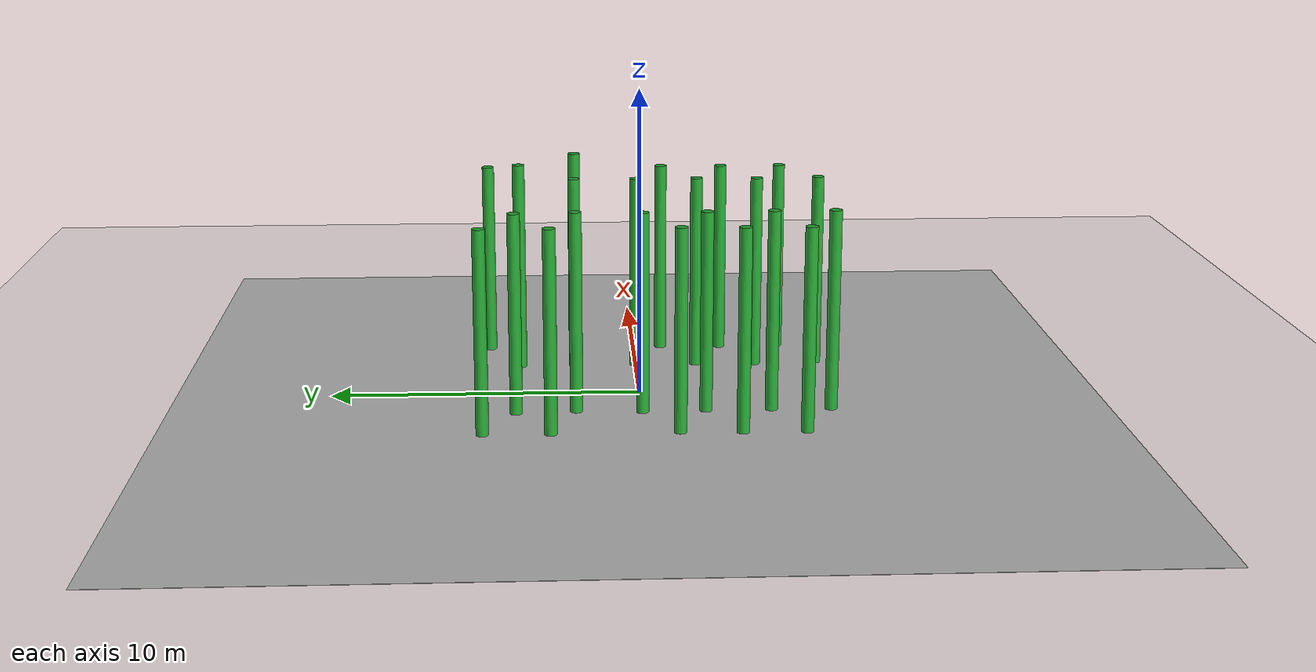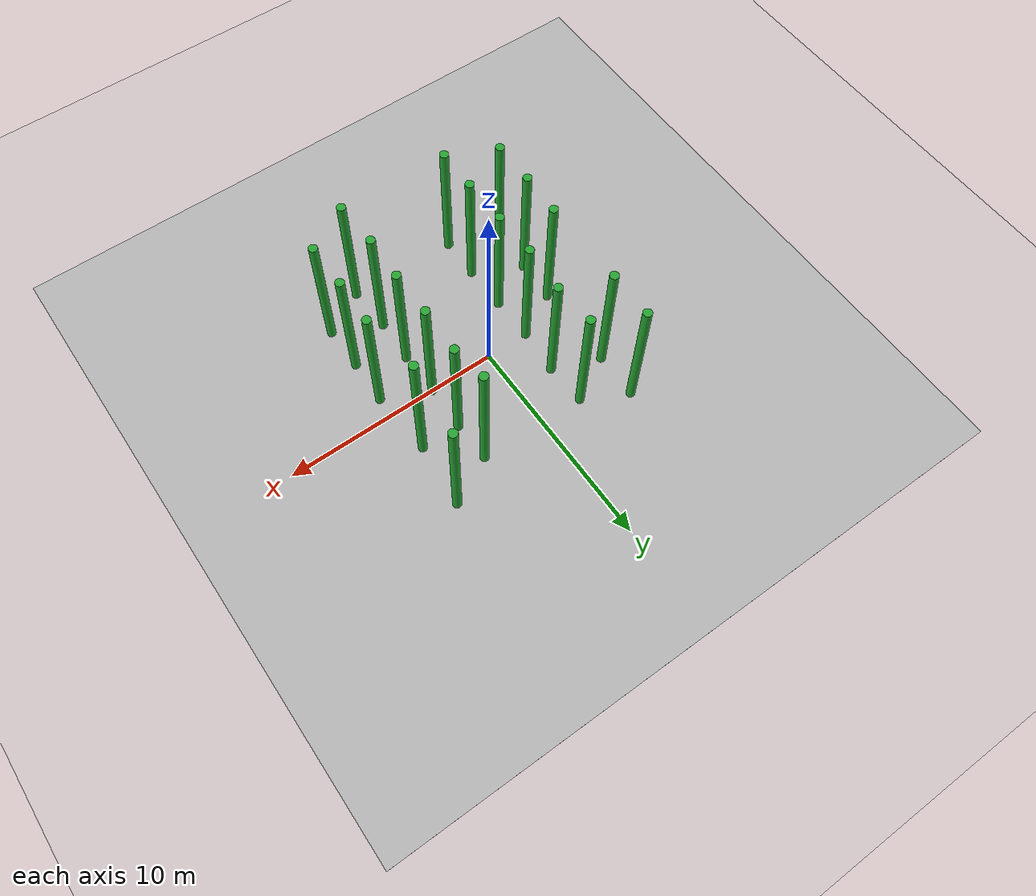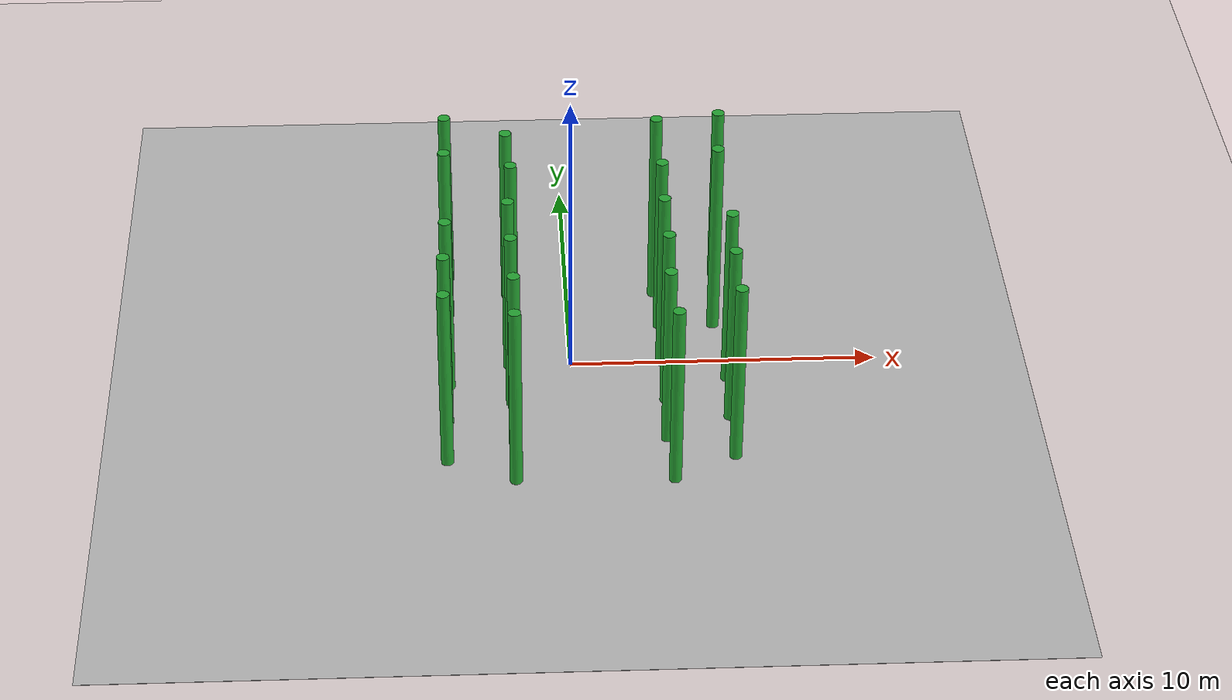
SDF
<sdf version="1.7">
 <world name="default">
  <physics type="ode">
   <ode>
    <solver>
     <type>quick</type>
     <iters>10</iters>
     <sor>1.3</sor>
     <use_dynamic_moi_rescaling>0</use_dynamic_moi_rescaling>
    </solver>
    <constraints>
     <cfm>0</cfm>
     <erp>0.2</erp>
     <contact_max_correcting_vel>100</contact_max_correcting_vel>
     <contact_surface_layer>0.001</contact_surface_layer>
    </constraints>
   </ode>
   <max_step_size>0.004</max_step_size>
   <real_time_factor>1</real_time_factor>
   <real_time_update_rate>250</real_time_update_rate>
  </physics>
  <light name="sun" type="directional">
   <cast_shadows>0</cast_shadows>
   <pose>0 0 100 0 -0 0</pose>
   <diffuse>0.8 0.8 0.8 1</diffuse>
   <specular>0.9 0.9 0.9 1</specular>
   <attenuation>
    <range>1000</range>
    <constant>0.9</constant>
    <linear>0.01</linear>
    <quadratic>0.001</quadratic>
   </attenuation>
   <direction>0.2 0.2 -0.9</direction>
   <spot><inner_angle>0</inner_angle><outer_angle>0</outer_angle><falloff>0</falloff></spot>
  </light>
  <model name="ground_plane">
   <static>1</static>
   <link name="link">
    <collision name="collision">
     <geometry><plane><normal>0 0 1</normal><size>100 100</size></plane></geometry>
     <surface>
      <contact><collide_bitmask>65535</collide_bitmask></contact>
      <friction><ode><mu>100</mu><mu2>50</mu2></ode></friction>
     </surface>
    </collision>
    <visual name="visual">
     <cast_shadows>0</cast_shadows>
     <geometry><plane><normal>0 0 1</normal><size>100 100</size></plane></geometry>
     <material>
      <script><uri>file://media/materials/scripts/gazebo.material</uri><name>Gazebo/Grey</name></script>
     </material>
    </visual>
   </link>
  </model>
  <model name="texture">
   <pose>-0.032466 0.060855 0 0 -0 0</pose>
   <static>1</static>
   <link name="prometheus_logo">
    <visual name="visual">
     <cast_shadows>0</cast_shadows>
     <geometry><box><size>30 30 0.01</size></box></geometry>
     <material>
      <script><uri>model://prometheus_texture/texture.material</uri><name>prometheus_logo2</name></script>
     </material>
    </visual>
   </link>
  </model>
  <model name="cylinder1">
   <frame name="obs_cylinder_small::__model__" attached_to="obs_cylinder_small::link">
    <pose relative_to="__model__">3 0 1.5 0 -0 0</pose>
   </frame>
   <link name="obs_cylinder_small::link">
    <inertial><mass>1</mass></inertial>
    <pose relative_to="obs_cylinder_small::__model__">0 0 0 0 -0 0</pose>
    <visual name="visual">
     <geometry><cylinder><radius>0.2</radius><length>10</length></cylinder></geometry>
     <material>
      <script><name>Gazebo/Green</name><uri>file://media/materials/scripts/gazebo.material</uri></script>
     </material>
    </visual>
    <collision name="collision">
     <geometry><cylinder><radius>0.25</radius><length>10</length></cylinder></geometry>
    </collision>
   </link>
   <static>1</static>
  </model>
  <model name="cylinder7">
   <pose>-1.91778 1.97815 0 0 -0 0</pose>
   <frame name="obs_cylinder_small::__model__" attached_to="obs_cylinder_small::link">
    <pose relative_to="__model__">7 3 1.5 0 -0 0</pose>
   </frame>
   <link name="obs_cylinder_small::link">
    <inertial><mass>1</mass></inertial>
    <pose relative_to="obs_cylinder_small::__model__">0 0 0 0 -0 0</pose>
    <visual name="visual">
     <geometry><cylinder><radius>0.2</radius><length>10</length></cylinder></geometry>
     <material>
      <script><name>Gazebo/Green</name><uri>file://media/materials/scripts/gazebo.material</uri></script>
     </material>
    </visual>
    <collision name="collision">
     <geometry><cylinder><radius>0.25</radius><length>10</length></cylinder></geometry>
    </collision>
   </link>
   <static>1</static>
  </model>
  <model name="cylinder8">
   <pose>-6.03622 0.907135 0 0 -0 0</pose>
   <frame name="obs_cylinder_small::__model__" attached_to="obs_cylinder_small::link">
    <pose relative_to="__model__">9 3 2 0 -0 0</pose>
   </frame>
   <link name="obs_cylinder_small::link">
    <inertial><mass>1</mass></inertial>
    <pose relative_to="obs_cylinder_small::__model__">0 0 0 0 -0 0</pose>
    <visual name="visual">
     <geometry><cylinder><radius>0.2</radius><length>10</length></cylinder></geometry>
     <material>
      <script><name>Gazebo/Green</name><uri>file://media/materials/scripts/gazebo.material</uri></script>
     </material>
    </visual>
    <collision name="collision">
     <geometry><cylinder><radius>0.25</radius><length>10</length></cylinder></geometry>
    </collision>
   </link>
   <static>1</static>
  </model>
  <model name="cylinder2">
   <pose>-0.162559 0.037504 0 0 -0 0</pose>
   <frame name="obs_cylinder_small::__model__" attached_to="obs_cylinder_small::link">
    <pose relative_to="__model__">5 2 2 0 -0 0</pose>
   </frame>
   <link name="obs_cylinder_small::link">
    <inertial><mass>1</mass></inertial>
    <pose relative_to="obs_cylinder_small::__model__">0 0 0 0 -0 0</pose>
    <visual name="visual">
     <geometry><cylinder><radius>0.2</radius><length>10</length></cylinder></geometry>
     <material>
      <script><name>Gazebo/Green</name><uri>file://media/materials/scripts/gazebo.material</uri></script>
     </material>
    </visual>
    <collision name="collision">
     <geometry><cylinder><radius>0.25</radius><length>10</length></cylinder></geometry>
    </collision>
   </link>
   <static>1</static>
  </model>
  <model name="cylinder3">
   <pose>0.020348 -1.01317 0 0 -0 0</pose>
   <frame name="obs_cylinder_small::__model__" attached_to="obs_cylinder_small::link">
    <pose relative_to="__model__">5 -2 1.5 0 -0 0</pose>
   </frame>
   <link name="obs_cylinder_small::link">
    <inertial><mass>1</mass></inertial>
    <pose relative_to="obs_cylinder_small::__model__">0 0 0 0 -0 0</pose>
    <visual name="visual">
     <geometry><cylinder><radius>0.2</radius><length>10</length></cylinder></geometry>
     <material>
      <script><name>Gazebo/Green</name><uri>file://media/materials/scripts/gazebo.material</uri></script>
     </material>
    </visual>
    <collision name="collision">
     <geometry><cylinder><radius>0.25</radius><length>10</length></cylinder></geometry>
    </collision>
   </link>
   <static>1</static>
  </model>
  <model name="cylinder4">
   <frame name="obs_cylinder_small::__model__" attached_to="obs_cylinder_small::link">
    <pose relative_to="__model__">-2 0 1.5 0 -0 0</pose>
   </frame>
   <link name="obs_cylinder_small::link">
    <inertial><mass>1</mass></inertial>
    <pose relative_to="obs_cylinder_small::__model__">0 0 0 0 -0 0</pose>
    <visual name="visual">
     <geometry><cylinder><radius>0.2</radius><length>10</length></cylinder></geometry>
     <material>
      <script><name>Gazebo/Green</name><uri>file://media/materials/scripts/gazebo.material</uri></script>
     </material>
    </visual>
    <collision name="collision">
     <geometry><cylinder><radius>0.25</radius><length>10</length></cylinder></geometry>
    </collision>
   </link>
   <static>1</static>
  </model>
  <model name="cylinder5">
   <pose>1.00421 -3.07276 0 0 -0 0</pose>
   <frame name="obs_cylinder_small::__model__" attached_to="obs_cylinder_small::link">
    <pose relative_to="__model__">-5 2 1.5 0 -0 0</pose>
   </frame>
   <link name="obs_cylinder_small::link">
    <inertial><mass>1</mass></inertial>
    <pose relative_to="obs_cylinder_small::__model__">0 0 0 0 -0 0</pose>
    <visual name="visual">
     <geometry><cylinder><radius>0.2</radius><length>10</length></cylinder></geometry>
     <material>
      <script><name>Gazebo/Green</name><uri>file://media/materials/scripts/gazebo.material</uri></script>
     </material>
    </visual>
    <collision name="collision">
     <geometry><cylinder><radius>0.25</radius><length>10</length></cylinder></geometry>
    </collision>
   </link>
   <static>1</static>
  </model>
  <model name="cylinder6">
   <pose>0.932836 -1.00371 0 0 -0 0</pose>
   <frame name="obs_cylinder_small::__model__" attached_to="obs_cylinder_small::link">
    <pose relative_to="__model__">-5 -2 1.5 0 -0 0</pose>
   </frame>
   <link name="obs_cylinder_small::link">
    <inertial><mass>1</mass></inertial>
    <pose relative_to="obs_cylinder_small::__model__">0 0 0 0 -0 0</pose>
    <visual name="visual">
     <geometry><cylinder><radius>0.2</radius><length>10</length></cylinder></geometry>
     <material>
      <script><name>Gazebo/Green</name><uri>file://media/materials/scripts/gazebo.material</uri></script>
     </material>
    </visual>
    <collision name="collision">
     <geometry><cylinder><radius>0.25</radius><length>10</length></cylinder></geometry>
    </collision>
   </link>
   <static>1</static>
  </model>
  <model name="cylinder4_clone_0">
   <frame name="obs_cylinder_small::__model__" attached_to="obs_cylinder_small::link">
    <pose relative_to="__model__">-1.97992 4.00703 1.5 0 -0 0</pose>
   </frame>
   <link name="obs_cylinder_small::link">
    <inertial><mass>1</mass></inertial>
    <pose relative_to="obs_cylinder_small::__model__">0 0 0 0 -0 0</pose>
    <visual name="visual">
     <geometry><cylinder><radius>0.2</radius><length>10</length></cylinder></geometry>
     <material>
      <script><name>Gazebo/Green</name><uri>file://media/materials/scripts/gazebo.material</uri></script>
     </material>
    </visual>
    <collision name="collision">
     <geometry><cylinder><radius>0.25</radius><length>10</length></cylinder></geometry>
    </collision>
   </link>
   <static>1</static>
  </model>
  <model name="cylinder4_clone_1">
   <frame name="obs_cylinder_small::__model__" attached_to="obs_cylinder_small::link">
    <pose relative_to="__model__">-1.9564 -2.0159 1.5 0 -0 0</pose>
   </frame>
   <link name="obs_cylinder_small::link">
    <inertial><mass>1</mass></inertial>
    <pose relative_to="obs_cylinder_small::__model__">0 0 0 0 -0 0</pose>
    <visual name="visual">
     <geometry><cylinder><radius>0.2</radius><length>10</length></cylinder></geometry>
     <material>
      <script><name>Gazebo/Green</name><uri>file://media/materials/scripts/gazebo.material</uri></script>
     </material>
    </visual>
    <collision name="collision">
     <geometry><cylinder><radius>0.25</radius><length>10</length></cylinder></geometry>
    </collision>
   </link>
   <static>1</static>
  </model>
  <model name="cylinder4_clone_13">
   <frame name="obs_cylinder_small::__model__" attached_to="obs_cylinder_small::link">
    <pose relative_to="__model__">3.01135 -2.03851 1.5 0 -0 0</pose>
   </frame>
   <link name="obs_cylinder_small::link">
    <inertial><mass>1</mass></inertial>
    <pose relative_to="obs_cylinder_small::__model__">0 0 0 0 -0 0</pose>
    <visual name="visual">
     <geometry><cylinder><radius>0.2</radius><length>10</length></cylinder></geometry>
     <material>
      <script><name>Gazebo/Green</name><uri>file://media/materials/scripts/gazebo.material</uri></script>
     </material>
    </visual>
    <collision name="collision">
     <geometry><cylinder><radius>0.25</radius><length>10</length></cylinder></geometry>
    </collision>
   </link>
   <static>1</static>
  </model>
  <model name="cylinder3_clone_10">
   <pose>0.015955 0.771974 0 0 -0 0</pose>
   <frame name="obs_cylinder_small::__model__" attached_to="obs_cylinder_small::link">
    <pose relative_to="__model__">3.03343 -6.9094 1.5 0 -0 0</pose>
   </frame>
   <link name="obs_cylinder_small::link">
    <inertial><mass>1</mass></inertial>
    <pose relative_to="obs_cylinder_small::__model__">0 0 0 0 -0 0</pose>
    <visual name="visual">
     <geometry><cylinder><radius>0.2</radius><length>10</length></cylinder></geometry>
     <material>
      <script><name>Gazebo/Green</name><uri>file://media/materials/scripts/gazebo.material</uri></script>
     </material>
    </visual>
    <collision name="collision">
     <geometry><cylinder><radius>0.25</radius><length>10</length></cylinder></geometry>
    </collision>
   </link>
   <static>1</static>
  </model>
  <model name="cylinder3_clone_11">
   <pose>-0.943706 1.69697 0 0 -0 0</pose>
   <frame name="obs_cylinder_small::__model__" attached_to="obs_cylinder_small::link">
    <pose relative_to="__model__">-0.97445 -5.80554 1.5 0 -0 0</pose>
   </frame>
   <link name="obs_cylinder_small::link">
    <inertial><mass>1</mass></inertial>
    <pose relative_to="obs_cylinder_small::__model__">0 0 0 0 -0 0</pose>
    <visual name="visual">
     <geometry><cylinder><radius>0.2</radius><length>10</length></cylinder></geometry>
     <material>
      <script><name>Gazebo/Green</name><uri>file://media/materials/scripts/gazebo.material</uri></script>
     </material>
    </visual>
    <collision name="collision">
     <geometry><cylinder><radius>0.25</radius><length>10</length></cylinder></geometry>
    </collision>
   </link>
   <static>1</static>
  </model>
  <model name="cylinder3_clone_12">
   <pose>1.10817 -0.00643 0 0 -0 0</pose>
   <frame name="obs_cylinder_small::__model__" attached_to="obs_cylinder_small::link">
    <pose relative_to="__model__">-3.04238 -6.01581 1.5 0 -0 0</pose>
   </frame>
   <link name="obs_cylinder_small::link">
    <inertial><mass>1</mass></inertial>
    <pose relative_to="obs_cylinder_small::__model__">0 0 0 0 -0 0</pose>
    <visual name="visual">
     <geometry><cylinder><radius>0.2</radius><length>10</length></cylinder></geometry>
     <material>
      <script><name>Gazebo/Green</name><uri>file://media/materials/scripts/gazebo.material</uri></script>
     </material>
    </visual>
    <collision name="collision">
     <geometry><cylinder><radius>0.25</radius><length>10</length></cylinder></geometry>
    </collision>
   </link>
   <static>1</static>
  </model>
  <model name="cylinder3_clone_13">
   <pose>0.896664 0.036639 0 0 -0 0</pose>
   <frame name="obs_cylinder_small::__model__" attached_to="obs_cylinder_small::link">
    <pose relative_to="__model__">-4.97933 -5.0259 1.5 0 -0 0</pose>
   </frame>
   <link name="obs_cylinder_small::link">
    <inertial><mass>1</mass></inertial>
    <pose relative_to="obs_cylinder_small::__model__">0 0 0 0 -0 0</pose>
    <visual name="visual">
     <geometry><cylinder><radius>0.2</radius><length>10</length></cylinder></geometry>
     <material>
      <script><name>Gazebo/Green</name><uri>file://media/materials/scripts/gazebo.material</uri></script>
     </material>
    </visual>
    <collision name="collision">
     <geometry><cylinder><radius>0.25</radius><length>10</length></cylinder></geometry>
    </collision>
   </link>
   <static>1</static>
  </model>
  <model name="cylinder3_clone_14">
   <pose>-2.92168 -2.93491 0 0 -0 0</pose>
   <frame name="obs_cylinder_small::__model__" attached_to="obs_cylinder_small::link">
    <pose relative_to="__model__">5.96757 5.00455 1.5 0 -0 0</pose>
   </frame>
   <link name="obs_cylinder_small::link">
    <inertial><mass>1</mass></inertial>
    <pose relative_to="obs_cylinder_small::__model__">0 0 0 0 -0 0</pose>
    <visual name="visual">
     <geometry><cylinder><radius>0.2</radius><length>10</length></cylinder></geometry>
     <material>
      <script><name>Gazebo/Green</name><uri>file://media/materials/scripts/gazebo.material</uri></script>
     </material>
    </visual>
    <collision name="collision">
     <geometry><cylinder><radius>0.25</radius><length>10</length></cylinder></geometry>
    </collision>
   </link>
   <static>1</static>
  </model>
  <model name="cylinder3_clone_3">
   <pose>0.913666 -0.051153 0 0 -0 0</pose>
   <frame name="obs_cylinder_small::__model__" attached_to="obs_cylinder_small::link">
    <pose relative_to="__model__">2.02255 -4.00149 1.5 0 -0 0</pose>
   </frame>
   <link name="obs_cylinder_small::link">
    <inertial><mass>1</mass></inertial>
    <pose relative_to="obs_cylinder_small::__model__">0 0 0 0 -0 0</pose>
    <visual name="visual">
     <geometry><cylinder><radius>0.2</radius><length>10</length></cylinder></geometry>
     <material>
      <script><name>Gazebo/Green</name><uri>file://media/materials/scripts/gazebo.material</uri></script>
     </material>
    </visual>
    <collision name="collision">
     <geometry><cylinder><radius>0.25</radius><length>10</length></cylinder></geometry>
    </collision>
   </link>
   <static>1</static>
  </model>
  <model name="cylinder3_clone_4">
   <pose>-4.14667 2.96353 0 0 -0 0</pose>
   <frame name="obs_cylinder_small::__model__" attached_to="obs_cylinder_small::link">
    <pose relative_to="__model__">0.17873 2.05724 1.5 0 -0 0</pose>
   </frame>
   <link name="obs_cylinder_small::link">
    <inertial><mass>1</mass></inertial>
    <pose relative_to="obs_cylinder_small::__model__">0 0 0 0 -0 0</pose>
    <visual name="visual">
     <geometry><cylinder><radius>0.2</radius><length>10</length></cylinder></geometry>
     <material>
      <script><name>Gazebo/Green</name><uri>file://media/materials/scripts/gazebo.material</uri></script>
     </material>
    </visual>
    <collision name="collision">
     <geometry><cylinder><radius>0.25</radius><length>10</length></cylinder></geometry>
    </collision>
   </link>
   <static>1</static>
  </model>
  <model name="cylinder3_clone_5">
   <frame name="obs_cylinder_small::__model__" attached_to="obs_cylinder_small::link">
    <pose relative_to="__model__">-1.85729 2.09778 1.5 0 -0 0</pose>
   </frame>
   <link name="obs_cylinder_small::link">
    <inertial><mass>1</mass></inertial>
    <pose relative_to="obs_cylinder_small::__model__">0 0 0 0 -0 0</pose>
    <visual name="visual">
     <geometry><cylinder><radius>0.2</radius><length>10</length></cylinder></geometry>
     <material>
      <script><name>Gazebo/Green</name><uri>file://media/materials/scripts/gazebo.material</uri></script>
     </material>
    </visual>
    <collision name="collision">
     <geometry><cylinder><radius>0.25</radius><length>10</length></cylinder></geometry>
    </collision>
   </link>
   <static>1</static>
  </model>
  <model name="cylinder3_clone_6">
   <pose>-0.008848 1.85545 0 0 -0 0</pose>
   <frame name="obs_cylinder_small::__model__" attached_to="obs_cylinder_small::link">
    <pose relative_to="__model__">-3.98585 1.05791 1.5 0 -0 0</pose>
   </frame>
   <link name="obs_cylinder_small::link">
    <inertial><mass>1</mass></inertial>
    <pose relative_to="obs_cylinder_small::__model__">0 0 0 0 -0 0</pose>
    <visual name="visual">
     <geometry><cylinder><radius>0.2</radius><length>10</length></cylinder></geometry>
     <material>
      <script><name>Gazebo/Green</name><uri>file://media/materials/scripts/gazebo.material</uri></script>
     </material>
    </visual>
    <collision name="collision">
     <geometry><cylinder><radius>0.25</radius><length>10</length></cylinder></geometry>
    </collision>
   </link>
   <static>1</static>
  </model>
  <model name="cylinder3_clone_7">
   <pose>-0.977859 4.92781 0 0 -0 0</pose>
   <frame name="obs_cylinder_small::__model__" attached_to="obs_cylinder_small::link">
    <pose relative_to="__model__">6.05648 -5.87728 1.5 0 -0 0</pose>
   </frame>
   <link name="obs_cylinder_small::link">
    <inertial><mass>1</mass></inertial>
    <pose relative_to="obs_cylinder_small::__model__">0 0 0 0 -0 0</pose>
    <visual name="visual">
     <geometry><cylinder><radius>0.2</radius><length>10</length></cylinder></geometry>
     <material>
      <script><name>Gazebo/Green</name><uri>file://media/materials/scripts/gazebo.material</uri></script>
     </material>
    </visual>
    <collision name="collision">
     <geometry><cylinder><radius>0.25</radius><length>10</length></cylinder></geometry>
    </collision>
   </link>
   <static>1</static>
  </model>
  <model name="cylinder3_clone_8">
   <pose>0.910556 0.871295 0 0 -0 0</pose>
   <frame name="obs_cylinder_small::__model__" attached_to="obs_cylinder_small::link">
    <pose relative_to="__model__">4.12375 -5.90525 1.5 0 -0 0</pose>
   </frame>
   <link name="obs_cylinder_small::link">
    <inertial><mass>1</mass></inertial>
    <pose relative_to="obs_cylinder_small::__model__">0 0 0 0 -0 0</pose>
    <visual name="visual">
     <geometry><cylinder><radius>0.2</radius><length>10</length></cylinder></geometry>
     <material>
      <script><name>Gazebo/Green</name><uri>file://media/materials/scripts/gazebo.material</uri></script>
     </material>
    </visual>
    <collision name="collision">
     <geometry><cylinder><radius>0.25</radius><length>10</length></cylinder></geometry>
    </collision>
   </link>
   <static>1</static>
  </model>
  <gravity>0 0 -9.8066</gravity>
  <magnetic_field>6e-06 2.3e-05 -4.2e-05</magnetic_field>
  <atmosphere type="adiabatic"/>
  <scene><ambient>0.4 0.4 0.4 1</ambient><background>0.7 0.7 0.7 1</background><shadows>1</shadows></scene>
  <spherical_coordinates>
   <surface_model>EARTH_WGS84</surface_model>
   <latitude_deg>0</latitude_deg>
   <longitude_deg>0</longitude_deg>
   <elevation>0</elevation>
   <heading_deg>0</heading_deg>
  </spherical_coordinates>
 </world>
</sdf>
